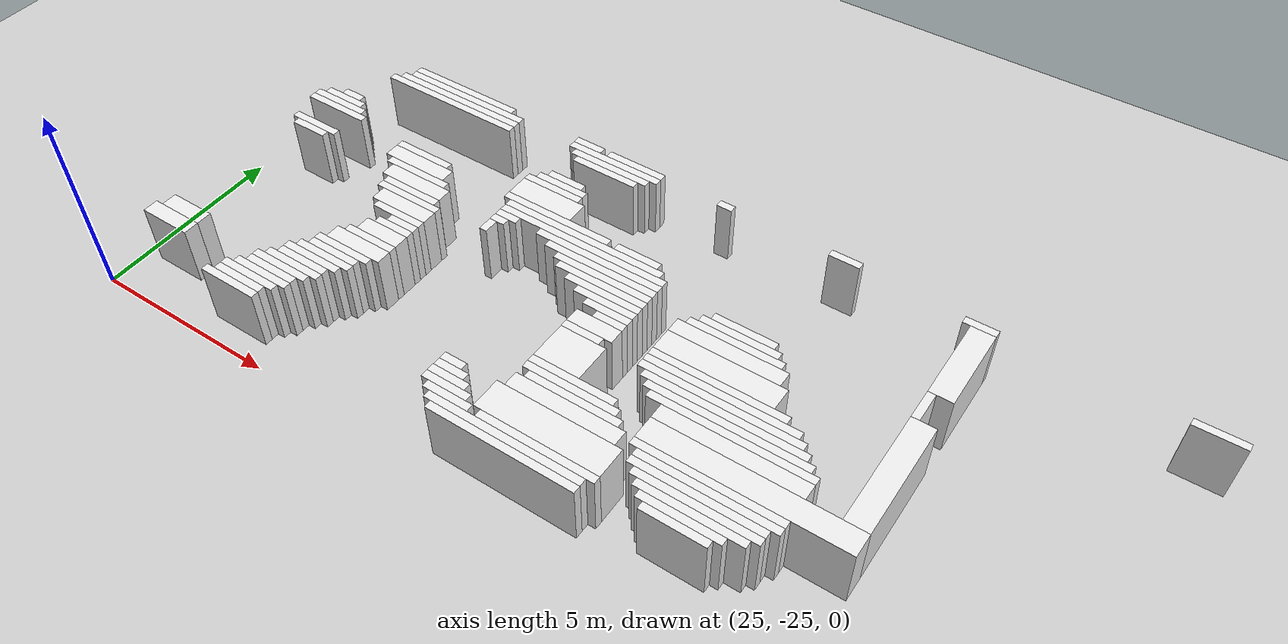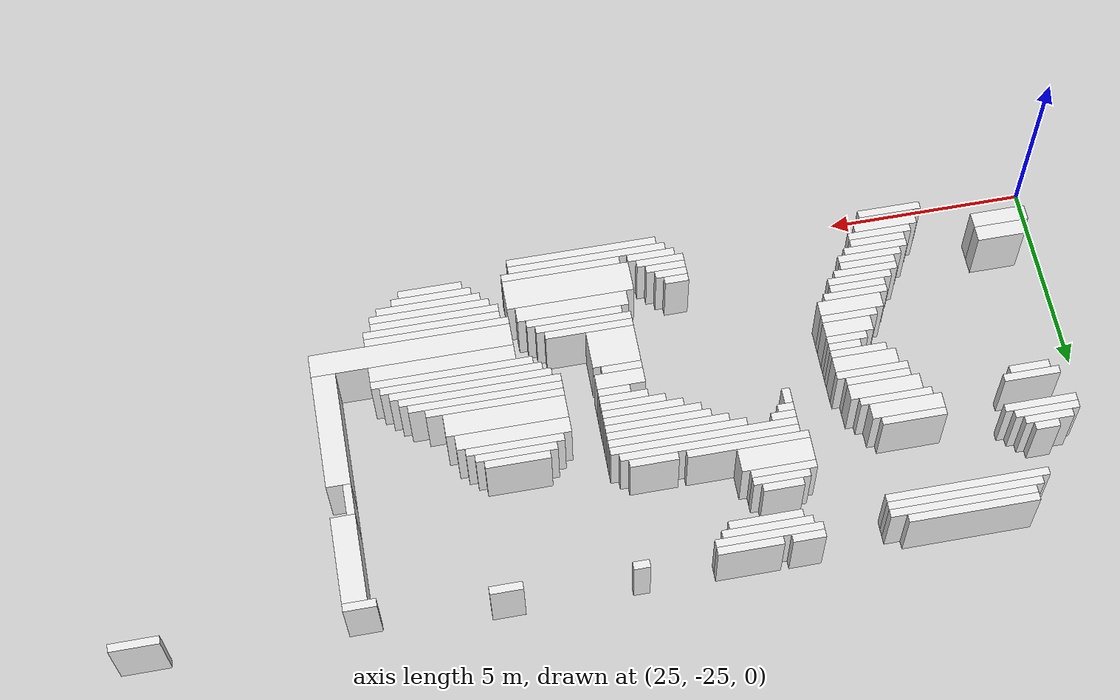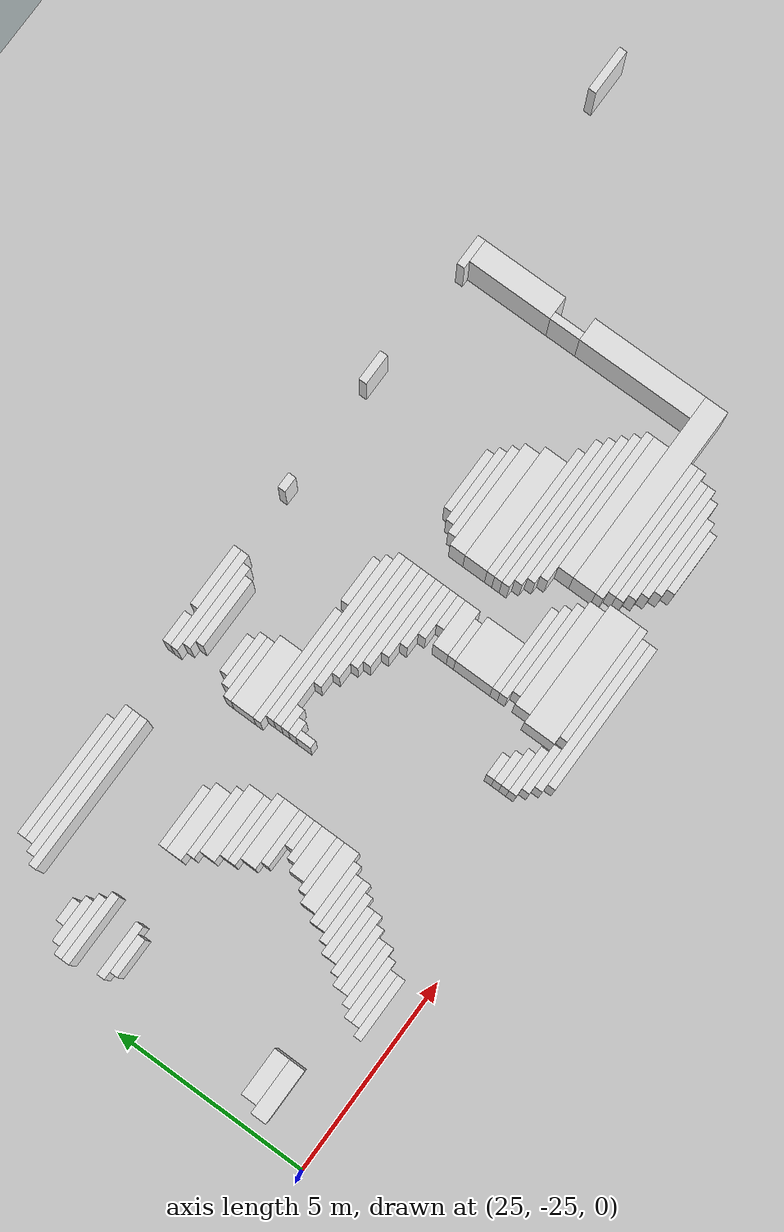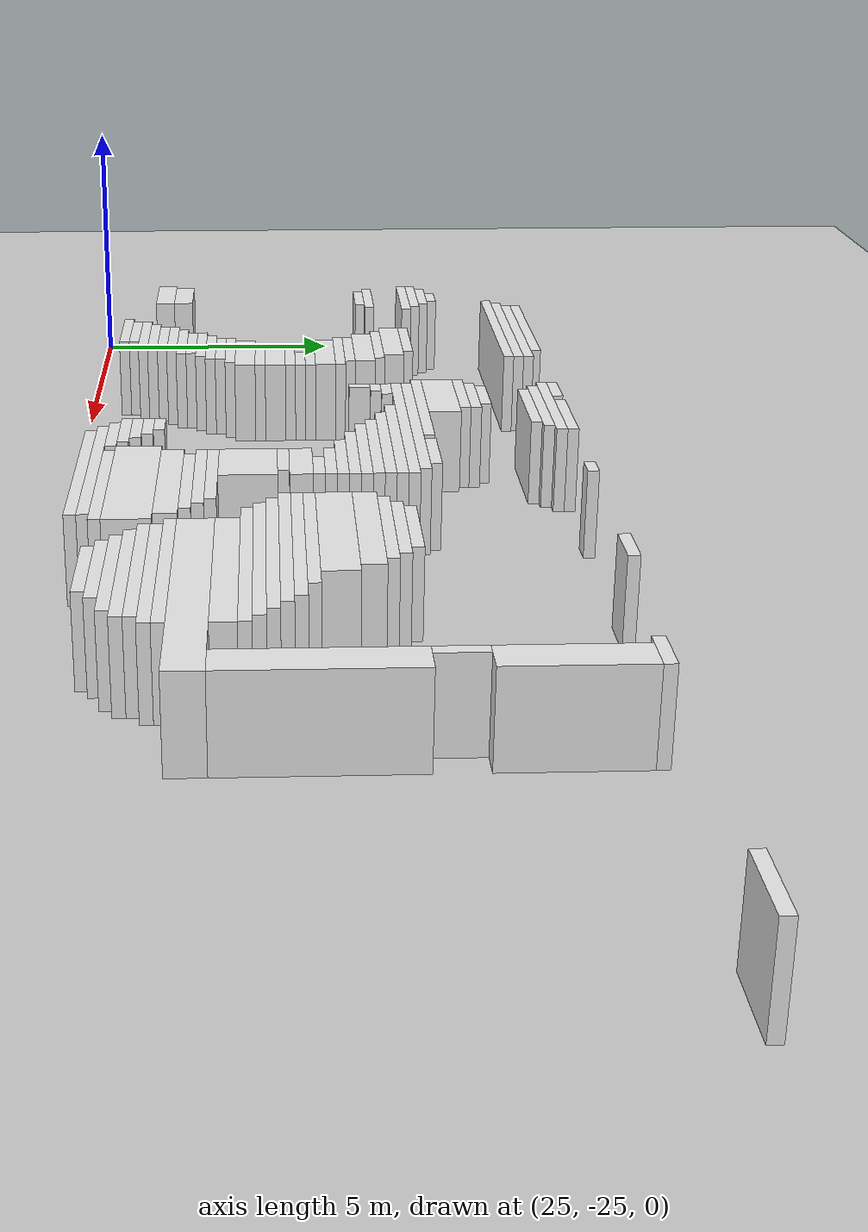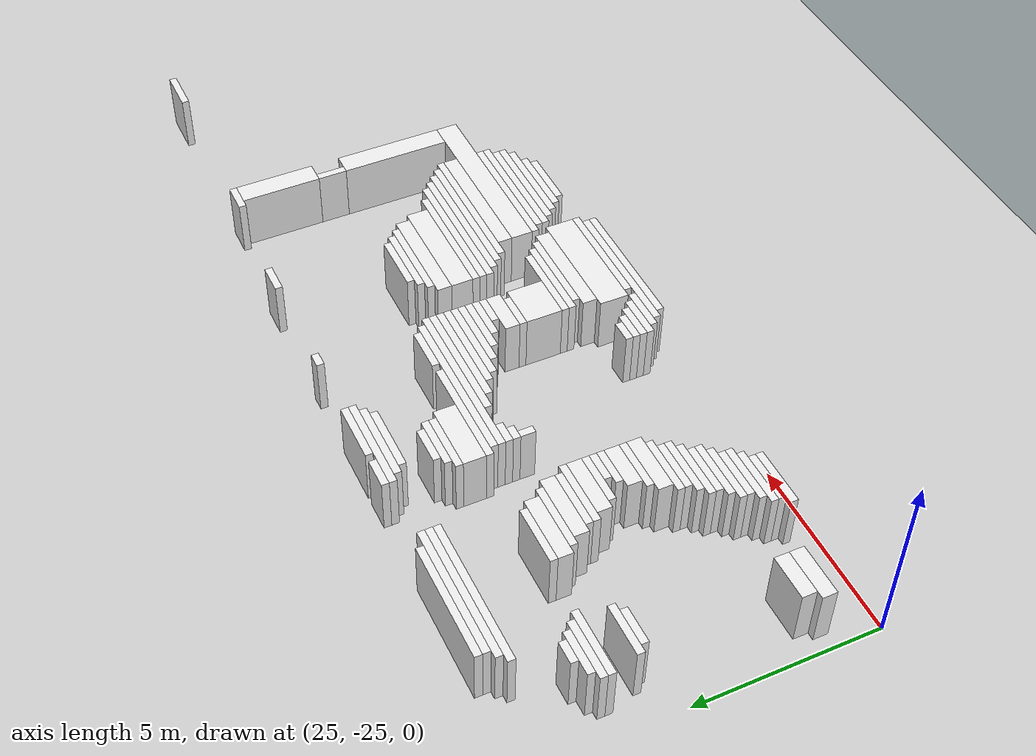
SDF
<sdf version="1.7">
 <world name="default">
  <model name="ground_plane">
   <static>1</static>
   <link name="link">
    <collision name="collision">
     <geometry><plane><normal>0 0 1</normal><size>120 120</size></plane></geometry>
    </collision>
    <visual name="visual">
     <geometry><plane><normal>0 0 1</normal><size>120 120</size></plane></geometry>
     <material>
      <script><uri>file://media/materials/scripts/gazebo.material</uri><name>Gazebo/Grey</name></script>
     </material>
    </visual>
   </link>
  </model>
  <model name="random_complex_01_model">
   <static>1</static>
   <link name="obs_2447">
    <pose>28.8000 -15.9000 0.8000 0 0 0</pose>
    <collision name="obs_2447_col"><geometry><box><size>3.2000 0.2000 1.6000</size></box></geometry></collision>
    <visual name="obs_2447_vis">
     <geometry><box><size>3.2000 0.2000 1.6000</size></box></geometry>
     <material>
      <script><uri>file://media/materials/scripts/gazebo.material</uri><name>Gazebo/White</name></script>
     </material>
    </visual>
   </link>
   <link name="obs_2448">
    <pose>32.8000 -15.9000 0.8000 0 0 0</pose>
    <collision name="obs_2448_col"><geometry><box><size>0.8000 0.2000 1.6000</size></box></geometry></collision>
    <visual name="obs_2448_vis">
     <geometry><box><size>0.8000 0.2000 1.6000</size></box></geometry>
     <material>
      <script><uri>file://media/materials/scripts/gazebo.material</uri><name>Gazebo/White</name></script>
     </material>
    </visual>
   </link>
   <link name="obs_2449">
    <pose>34.2000 -15.9000 0.8000 0 0 0</pose>
    <collision name="obs_2449_col"><geometry><box><size>1.6000 0.2000 1.6000</size></box></geometry></collision>
    <visual name="obs_2449_vis">
     <geometry><box><size>1.6000 0.2000 1.6000</size></box></geometry>
     <material>
      <script><uri>file://media/materials/scripts/gazebo.material</uri><name>Gazebo/White</name></script>
     </material>
    </visual>
   </link>
   <link name="obs_2450">
    <pose>36.8000 -15.9000 0.8000 0 0 0</pose>
    <collision name="obs_2450_col"><geometry><box><size>0.4000 0.2000 1.6000</size></box></geometry></collision>
    <visual name="obs_2450_vis">
     <geometry><box><size>0.4000 0.2000 1.6000</size></box></geometry>
     <material>
      <script><uri>file://media/materials/scripts/gazebo.material</uri><name>Gazebo/White</name></script>
     </material>
    </visual>
   </link>
   <link name="obs_2451">
    <pose>40.0000 -15.9000 0.8000 0 0 0</pose>
    <collision name="obs_2451_col"><geometry><box><size>0.8000 0.2000 1.6000</size></box></geometry></collision>
    <visual name="obs_2451_vis">
     <geometry><box><size>0.8000 0.2000 1.6000</size></box></geometry>
     <material>
      <script><uri>file://media/materials/scripts/gazebo.material</uri><name>Gazebo/White</name></script>
     </material>
    </visual>
   </link>
   <link name="obs_2459">
    <pose>29.0000 -16.1000 0.8000 0 0 0</pose>
    <collision name="obs_2459_col"><geometry><box><size>3.6000 0.2000 1.6000</size></box></geometry></collision>
    <visual name="obs_2459_vis">
     <geometry><box><size>3.6000 0.2000 1.6000</size></box></geometry>
     <material>
      <script><uri>file://media/materials/scripts/gazebo.material</uri><name>Gazebo/White</name></script>
     </material>
    </visual>
   </link>
   <link name="obs_2460">
    <pose>33.7000 -16.1000 0.8000 0 0 0</pose>
    <collision name="obs_2460_col"><geometry><box><size>2.6000 0.2000 1.6000</size></box></geometry></collision>
    <visual name="obs_2460_vis">
     <geometry><box><size>2.6000 0.2000 1.6000</size></box></geometry>
     <material>
      <script><uri>file://media/materials/scripts/gazebo.material</uri><name>Gazebo/White</name></script>
     </material>
    </visual>
   </link>
   <link name="obs_2461">
    <pose>43.4000 -16.1000 0.8000 0 0 0</pose>
    <collision name="obs_2461_col"><geometry><box><size>0.8000 0.2000 1.6000</size></box></geometry></collision>
    <visual name="obs_2461_vis">
     <geometry><box><size>0.8000 0.2000 1.6000</size></box></geometry>
     <material>
      <script><uri>file://media/materials/scripts/gazebo.material</uri><name>Gazebo/White</name></script>
     </material>
    </visual>
   </link>
   <link name="obs_2462">
    <pose>48.6000 -16.1000 0.8000 0 0 0</pose>
    <collision name="obs_2462_col"><geometry><box><size>1.2000 0.2000 1.6000</size></box></geometry></collision>
    <visual name="obs_2462_vis">
     <geometry><box><size>1.2000 0.2000 1.6000</size></box></geometry>
     <material>
      <script><uri>file://media/materials/scripts/gazebo.material</uri><name>Gazebo/White</name></script>
     </material>
    </visual>
   </link>
   <link name="obs_2468">
    <pose>28.9000 -16.3000 0.8000 0 0 0</pose>
    <collision name="obs_2468_col"><geometry><box><size>3.8000 0.2000 1.6000</size></box></geometry></collision>
    <visual name="obs_2468_vis">
     <geometry><box><size>3.8000 0.2000 1.6000</size></box></geometry>
     <material>
      <script><uri>file://media/materials/scripts/gazebo.material</uri><name>Gazebo/White</name></script>
     </material>
    </visual>
   </link>
   <link name="obs_2469">
    <pose>33.7000 -16.3000 0.8000 0 0 0</pose>
    <collision name="obs_2469_col"><geometry><box><size>2.2000 0.2000 1.6000</size></box></geometry></collision>
    <visual name="obs_2469_vis">
     <geometry><box><size>2.2000 0.2000 1.6000</size></box></geometry>
     <material>
      <script><uri>file://media/materials/scripts/gazebo.material</uri><name>Gazebo/White</name></script>
     </material>
    </visual>
   </link>
   <link name="obs_2482">
    <pose>28.8000 -16.5000 0.8000 0 0 0</pose>
    <collision name="obs_2482_col"><geometry><box><size>4.0000 0.2000 1.6000</size></box></geometry></collision>
    <visual name="obs_2482_vis">
     <geometry><box><size>4.0000 0.2000 1.6000</size></box></geometry>
     <material>
      <script><uri>file://media/materials/scripts/gazebo.material</uri><name>Gazebo/White</name></script>
     </material>
    </visual>
   </link>
   <link name="obs_2483">
    <pose>33.7000 -16.5000 0.8000 0 0 0</pose>
    <collision name="obs_2483_col"><geometry><box><size>1.8000 0.2000 1.6000</size></box></geometry></collision>
    <visual name="obs_2483_vis">
     <geometry><box><size>1.8000 0.2000 1.6000</size></box></geometry>
     <material>
      <script><uri>file://media/materials/scripts/gazebo.material</uri><name>Gazebo/White</name></script>
     </material>
    </visual>
   </link>
   <link name="obs_2493">
    <pose>33.1000 -17.3000 0.8000 0 0 0</pose>
    <collision name="obs_2493_col"><geometry><box><size>1.0000 0.2000 1.6000</size></box></geometry></collision>
    <visual name="obs_2493_vis">
     <geometry><box><size>1.0000 0.2000 1.6000</size></box></geometry>
     <material>
      <script><uri>file://media/materials/scripts/gazebo.material</uri><name>Gazebo/White</name></script>
     </material>
    </visual>
   </link>
   <link name="obs_2498">
    <pose>33.1000 -17.5000 0.8000 0 0 0</pose>
    <collision name="obs_2498_col"><geometry><box><size>1.4000 0.2000 1.6000</size></box></geometry></collision>
    <visual name="obs_2498_vis">
     <geometry><box><size>1.4000 0.2000 1.6000</size></box></geometry>
     <material>
      <script><uri>file://media/materials/scripts/gazebo.material</uri><name>Gazebo/White</name></script>
     </material>
    </visual>
   </link>
   <link name="obs_2505">
    <pose>26.5000 -17.7000 0.8000 0 0 0</pose>
    <collision name="obs_2505_col"><geometry><box><size>0.6000 0.2000 1.6000</size></box></geometry></collision>
    <visual name="obs_2505_vis">
     <geometry><box><size>0.6000 0.2000 1.6000</size></box></geometry>
     <material>
      <script><uri>file://media/materials/scripts/gazebo.material</uri><name>Gazebo/White</name></script>
     </material>
    </visual>
   </link>
   <link name="obs_2506">
    <pose>33.0000 -17.7000 0.8000 0 0 0</pose>
    <collision name="obs_2506_col"><geometry><box><size>1.6000 0.2000 1.6000</size></box></geometry></collision>
    <visual name="obs_2506_vis">
     <geometry><box><size>1.6000 0.2000 1.6000</size></box></geometry>
     <material>
      <script><uri>file://media/materials/scripts/gazebo.material</uri><name>Gazebo/White</name></script>
     </material>
    </visual>
   </link>
   <link name="obs_2512">
    <pose>26.4000 -17.9000 0.8000 0 0 0</pose>
    <collision name="obs_2512_col"><geometry><box><size>1.2000 0.2000 1.6000</size></box></geometry></collision>
    <visual name="obs_2512_vis">
     <geometry><box><size>1.2000 0.2000 1.6000</size></box></geometry>
     <material>
      <script><uri>file://media/materials/scripts/gazebo.material</uri><name>Gazebo/White</name></script>
     </material>
    </visual>
   </link>
   <link name="obs_2517">
    <pose>26.4000 -18.1000 0.8000 0 0 0</pose>
    <collision name="obs_2517_col"><geometry><box><size>1.6000 0.2000 1.6000</size></box></geometry></collision>
    <visual name="obs_2517_vis">
     <geometry><box><size>1.6000 0.2000 1.6000</size></box></geometry>
     <material>
      <script><uri>file://media/materials/scripts/gazebo.material</uri><name>Gazebo/White</name></script>
     </material>
    </visual>
   </link>
   <link name="obs_2518">
    <pose>43.5000 -17.3000 0.8000 0 0 0</pose>
    <collision name="obs_2518_col"><geometry><box><size>0.6000 2.2000 1.6000</size></box></geometry></collision>
    <visual name="obs_2518_vis">
     <geometry><box><size>0.6000 2.2000 1.6000</size></box></geometry>
     <material>
      <script><uri>file://media/materials/scripts/gazebo.material</uri><name>Gazebo/White</name></script>
     </material>
    </visual>
   </link>
   <link name="obs_2521">
    <pose>33.1000 -18.1000 0.8000 0 0 0</pose>
    <collision name="obs_2521_col"><geometry><box><size>1.8000 0.6000 1.6000</size></box></geometry></collision>
    <visual name="obs_2521_vis">
     <geometry><box><size>1.8000 0.6000 1.6000</size></box></geometry>
     <material>
      <script><uri>file://media/materials/scripts/gazebo.material</uri><name>Gazebo/White</name></script>
     </material>
    </visual>
   </link>
   <link name="obs_2524">
    <pose>26.5000 -18.3000 0.8000 0 0 0</pose>
    <collision name="obs_2524_col"><geometry><box><size>1.8000 0.2000 1.6000</size></box></geometry></collision>
    <visual name="obs_2524_vis">
     <geometry><box><size>1.8000 0.2000 1.6000</size></box></geometry>
     <material>
      <script><uri>file://media/materials/scripts/gazebo.material</uri><name>Gazebo/White</name></script>
     </material>
    </visual>
   </link>
   <link name="obs_2530">
    <pose>29.6000 -18.5000 0.8000 0 0 0</pose>
    <collision name="obs_2530_col"><geometry><box><size>1.6000 0.2000 1.6000</size></box></geometry></collision>
    <visual name="obs_2530_vis">
     <geometry><box><size>1.6000 0.2000 1.6000</size></box></geometry>
     <material>
      <script><uri>file://media/materials/scripts/gazebo.material</uri><name>Gazebo/White</name></script>
     </material>
    </visual>
   </link>
   <link name="obs_2531">
    <pose>33.7000 -18.5000 0.8000 0 0 0</pose>
    <collision name="obs_2531_col"><geometry><box><size>3.0000 0.2000 1.6000</size></box></geometry></collision>
    <visual name="obs_2531_vis">
     <geometry><box><size>3.0000 0.2000 1.6000</size></box></geometry>
     <material>
      <script><uri>file://media/materials/scripts/gazebo.material</uri><name>Gazebo/White</name></script>
     </material>
    </visual>
   </link>
   <link name="obs_2532">
    <pose>36.0000 -18.5000 0.8000 0 0 0</pose>
    <collision name="obs_2532_col"><geometry><box><size>1.2000 0.2000 1.6000</size></box></geometry></collision>
    <visual name="obs_2532_vis">
     <geometry><box><size>1.2000 0.2000 1.6000</size></box></geometry>
     <material>
      <script><uri>file://media/materials/scripts/gazebo.material</uri><name>Gazebo/White</name></script>
     </material>
    </visual>
   </link>
   <link name="obs_2534">
    <pose>34.6000 -18.7000 0.8000 0 0 0</pose>
    <collision name="obs_2534_col"><geometry><box><size>4.4000 0.2000 1.6000</size></box></geometry></collision>
    <visual name="obs_2534_vis">
     <geometry><box><size>4.4000 0.2000 1.6000</size></box></geometry>
     <material>
      <script><uri>file://media/materials/scripts/gazebo.material</uri><name>Gazebo/White</name></script>
     </material>
    </visual>
   </link>
   <link name="obs_2535">
    <pose>29.7000 -18.8000 0.8000 0 0 0</pose>
    <collision name="obs_2535_col"><geometry><box><size>1.8000 0.4000 1.6000</size></box></geometry></collision>
    <visual name="obs_2535_vis">
     <geometry><box><size>1.8000 0.4000 1.6000</size></box></geometry>
     <material>
      <script><uri>file://media/materials/scripts/gazebo.material</uri><name>Gazebo/White</name></script>
     </material>
    </visual>
   </link>
   <link name="obs_2537">
    <pose>34.7000 -18.9000 0.8000 0 0 0</pose>
    <collision name="obs_2537_col"><geometry><box><size>4.6000 0.2000 1.6000</size></box></geometry></collision>
    <visual name="obs_2537_vis">
     <geometry><box><size>4.6000 0.2000 1.6000</size></box></geometry>
     <material>
      <script><uri>file://media/materials/scripts/gazebo.material</uri><name>Gazebo/White</name></script>
     </material>
    </visual>
   </link>
   <link name="obs_2539">
    <pose>43.3000 -18.8000 0.8000 0 0 0</pose>
    <collision name="obs_2539_col"><geometry><box><size>0.2000 0.8000 1.6000</size></box></geometry></collision>
    <visual name="obs_2539_vis">
     <geometry><box><size>0.2000 0.8000 1.6000</size></box></geometry>
     <material>
      <script><uri>file://media/materials/scripts/gazebo.material</uri><name>Gazebo/White</name></script>
     </material>
    </visual>
   </link>
   <link name="obs_2543">
    <pose>26.5000 -19.1000 0.8000 0 0 0</pose>
    <collision name="obs_2543_col"><geometry><box><size>1.4000 0.2000 1.6000</size></box></geometry></collision>
    <visual name="obs_2543_vis">
     <geometry><box><size>1.4000 0.2000 1.6000</size></box></geometry>
     <material>
      <script><uri>file://media/materials/scripts/gazebo.material</uri><name>Gazebo/White</name></script>
     </material>
    </visual>
   </link>
   <link name="obs_2544">
    <pose>29.9000 -19.1000 0.8000 0 0 0</pose>
    <collision name="obs_2544_col"><geometry><box><size>1.8000 0.2000 1.6000</size></box></geometry></collision>
    <visual name="obs_2544_vis">
     <geometry><box><size>1.8000 0.2000 1.6000</size></box></geometry>
     <material>
      <script><uri>file://media/materials/scripts/gazebo.material</uri><name>Gazebo/White</name></script>
     </material>
    </visual>
   </link>
   <link name="obs_2545">
    <pose>32.7000 -19.1000 0.8000 0 0 0</pose>
    <collision name="obs_2545_col"><geometry><box><size>0.6000 0.2000 1.6000</size></box></geometry></collision>
    <visual name="obs_2545_vis">
     <geometry><box><size>0.6000 0.2000 1.6000</size></box></geometry>
     <material>
      <script><uri>file://media/materials/scripts/gazebo.material</uri><name>Gazebo/White</name></script>
     </material>
    </visual>
   </link>
   <link name="obs_2546">
    <pose>35.3000 -19.1000 0.8000 0 0 0</pose>
    <collision name="obs_2546_col"><geometry><box><size>3.4000 0.2000 1.6000</size></box></geometry></collision>
    <visual name="obs_2546_vis">
     <geometry><box><size>3.4000 0.2000 1.6000</size></box></geometry>
     <material>
      <script><uri>file://media/materials/scripts/gazebo.material</uri><name>Gazebo/White</name></script>
     </material>
    </visual>
   </link>
   <link name="obs_2547">
    <pose>39.2000 -19.1000 0.8000 0 0 0</pose>
    <collision name="obs_2547_col"><geometry><box><size>1.6000 0.2000 1.6000</size></box></geometry></collision>
    <visual name="obs_2547_vis">
     <geometry><box><size>1.6000 0.2000 1.6000</size></box></geometry>
     <material>
      <script><uri>file://media/materials/scripts/gazebo.material</uri><name>Gazebo/White</name></script>
     </material>
    </visual>
   </link>
   <link name="obs_2553">
    <pose>26.5000 -19.3000 0.8000 0 0 0</pose>
    <collision name="obs_2553_col"><geometry><box><size>1.0000 0.2000 1.6000</size></box></geometry></collision>
    <visual name="obs_2553_vis">
     <geometry><box><size>1.0000 0.2000 1.6000</size></box></geometry>
     <material>
      <script><uri>file://media/materials/scripts/gazebo.material</uri><name>Gazebo/White</name></script>
     </material>
    </visual>
   </link>
   <link name="obs_2554">
    <pose>32.6000 -19.3000 0.8000 0 0 0</pose>
    <collision name="obs_2554_col"><geometry><box><size>0.4000 0.2000 1.6000</size></box></geometry></collision>
    <visual name="obs_2554_vis">
     <geometry><box><size>0.4000 0.2000 1.6000</size></box></geometry>
     <material>
      <script><uri>file://media/materials/scripts/gazebo.material</uri><name>Gazebo/White</name></script>
     </material>
    </visual>
   </link>
   <link name="obs_2555">
    <pose>35.5000 -19.3000 0.8000 0 0 0</pose>
    <collision name="obs_2555_col"><geometry><box><size>3.0000 0.2000 1.6000</size></box></geometry></collision>
    <visual name="obs_2555_vis">
     <geometry><box><size>3.0000 0.2000 1.6000</size></box></geometry>
     <material>
      <script><uri>file://media/materials/scripts/gazebo.material</uri><name>Gazebo/White</name></script>
     </material>
    </visual>
   </link>
   <link name="obs_2556">
    <pose>39.2000 -19.3000 0.8000 0 0 0</pose>
    <collision name="obs_2556_col"><geometry><box><size>2.0000 0.2000 1.6000</size></box></geometry></collision>
    <visual name="obs_2556_vis">
     <geometry><box><size>2.0000 0.2000 1.6000</size></box></geometry>
     <material>
      <script><uri>file://media/materials/scripts/gazebo.material</uri><name>Gazebo/White</name></script>
     </material>
    </visual>
   </link>
   <link name="obs_2558">
    <pose>30.1000 -19.4000 0.8000 0 0 0</pose>
    <collision name="obs_2558_col"><geometry><box><size>1.8000 0.4000 1.6000</size></box></geometry></collision>
    <visual name="obs_2558_vis">
     <geometry><box><size>1.8000 0.4000 1.6000</size></box></geometry>
     <material>
      <script><uri>file://media/materials/scripts/gazebo.material</uri><name>Gazebo/White</name></script>
     </material>
    </visual>
   </link>
   <link name="obs_2563">
    <pose>35.7000 -19.5000 0.8000 0 0 0</pose>
    <collision name="obs_2563_col"><geometry><box><size>2.6000 0.2000 1.6000</size></box></geometry></collision>
    <visual name="obs_2563_vis">
     <geometry><box><size>2.6000 0.2000 1.6000</size></box></geometry>
     <material>
      <script><uri>file://media/materials/scripts/gazebo.material</uri><name>Gazebo/White</name></script>
     </material>
    </visual>
   </link>
   <link name="obs_2564">
    <pose>39.2000 -19.5000 0.8000 0 0 0</pose>
    <collision name="obs_2564_col"><geometry><box><size>2.4000 0.2000 1.6000</size></box></geometry></collision>
    <visual name="obs_2564_vis">
     <geometry><box><size>2.4000 0.2000 1.6000</size></box></geometry>
     <material>
      <script><uri>file://media/materials/scripts/gazebo.material</uri><name>Gazebo/White</name></script>
     </material>
    </visual>
   </link>
   <link name="obs_2566">
    <pose>32.5000 -19.6000 0.8000 0 0 0</pose>
    <collision name="obs_2566_col"><geometry><box><size>0.2000 0.4000 1.6000</size></box></geometry></collision>
    <visual name="obs_2566_vis">
     <geometry><box><size>0.2000 0.4000 1.6000</size></box></geometry>
     <material>
      <script><uri>file://media/materials/scripts/gazebo.material</uri><name>Gazebo/White</name></script>
     </material>
    </visual>
   </link>
   <link name="obs_2571">
    <pose>30.2000 -19.7000 0.8000 0 0 0</pose>
    <collision name="obs_2571_col"><geometry><box><size>1.6000 0.2000 1.6000</size></box></geometry></collision>
    <visual name="obs_2571_vis">
     <geometry><box><size>1.6000 0.2000 1.6000</size></box></geometry>
     <material>
      <script><uri>file://media/materials/scripts/gazebo.material</uri><name>Gazebo/White</name></script>
     </material>
    </visual>
   </link>
   <link name="obs_2572">
    <pose>35.8000 -19.7000 0.8000 0 0 0</pose>
    <collision name="obs_2572_col"><geometry><box><size>2.4000 0.2000 1.6000</size></box></geometry></collision>
    <visual name="obs_2572_vis">
     <geometry><box><size>2.4000 0.2000 1.6000</size></box></geometry>
     <material>
      <script><uri>file://media/materials/scripts/gazebo.material</uri><name>Gazebo/White</name></script>
     </material>
    </visual>
   </link>
   <link name="obs_2574">
    <pose>39.2000 -19.8000 0.8000 0 0 0</pose>
    <collision name="obs_2574_col"><geometry><box><size>2.8000 0.4000 1.6000</size></box></geometry></collision>
    <visual name="obs_2574_vis">
     <geometry><box><size>2.8000 0.4000 1.6000</size></box></geometry>
     <material>
      <script><uri>file://media/materials/scripts/gazebo.material</uri><name>Gazebo/White</name></script>
     </material>
    </visual>
   </link>
   <link name="obs_2578">
    <pose>30.3000 -19.9000 0.8000 0 0 0</pose>
    <collision name="obs_2578_col"><geometry><box><size>1.8000 0.2000 1.6000</size></box></geometry></collision>
    <visual name="obs_2578_vis">
     <geometry><box><size>1.8000 0.2000 1.6000</size></box></geometry>
     <material>
      <script><uri>file://media/materials/scripts/gazebo.material</uri><name>Gazebo/White</name></script>
     </material>
    </visual>
   </link>
   <link name="obs_2579">
    <pose>36.0000 -19.9000 0.8000 0 0 0</pose>
    <collision name="obs_2579_col"><geometry><box><size>2.0000 0.2000 1.6000</size></box></geometry></collision>
    <visual name="obs_2579_vis">
     <geometry><box><size>2.0000 0.2000 1.6000</size></box></geometry>
     <material>
      <script><uri>file://media/materials/scripts/gazebo.material</uri><name>Gazebo/White</name></script>
     </material>
    </visual>
   </link>
   <link name="obs_2585">
    <pose>36.2000 -20.1000 0.8000 0 0 0</pose>
    <collision name="obs_2585_col"><geometry><box><size>1.6000 0.2000 1.6000</size></box></geometry></collision>
    <visual name="obs_2585_vis">
     <geometry><box><size>1.6000 0.2000 1.6000</size></box></geometry>
     <material>
      <script><uri>file://media/materials/scripts/gazebo.material</uri><name>Gazebo/White</name></script>
     </material>
    </visual>
   </link>
   <link name="obs_2587">
    <pose>30.4000 -20.2000 0.8000 0 0 0</pose>
    <collision name="obs_2587_col"><geometry><box><size>1.6000 0.4000 1.6000</size></box></geometry></collision>
    <visual name="obs_2587_vis">
     <geometry><box><size>1.6000 0.4000 1.6000</size></box></geometry>
     <material>
      <script><uri>file://media/materials/scripts/gazebo.material</uri><name>Gazebo/White</name></script>
     </material>
    </visual>
   </link>
   <link name="obs_2591">
    <pose>36.4000 -20.3000 0.8000 0 0 0</pose>
    <collision name="obs_2591_col"><geometry><box><size>1.2000 0.2000 1.6000</size></box></geometry></collision>
    <visual name="obs_2591_vis">
     <geometry><box><size>1.2000 0.2000 1.6000</size></box></geometry>
     <material>
      <script><uri>file://media/materials/scripts/gazebo.material</uri><name>Gazebo/White</name></script>
     </material>
    </visual>
   </link>
   <link name="obs_2592">
    <pose>39.3000 -20.3000 0.8000 0 0 0</pose>
    <collision name="obs_2592_col"><geometry><box><size>3.0000 0.6000 1.6000</size></box></geometry></collision>
    <visual name="obs_2592_vis">
     <geometry><box><size>3.0000 0.6000 1.6000</size></box></geometry>
     <material>
      <script><uri>file://media/materials/scripts/gazebo.material</uri><name>Gazebo/White</name></script>
     </material>
    </visual>
   </link>
   <link name="obs_2598">
    <pose>30.5000 -20.5000 0.8000 0 0 0</pose>
    <collision name="obs_2598_col"><geometry><box><size>1.4000 0.2000 1.6000</size></box></geometry></collision>
    <visual name="obs_2598_vis">
     <geometry><box><size>1.4000 0.2000 1.6000</size></box></geometry>
     <material>
      <script><uri>file://media/materials/scripts/gazebo.material</uri><name>Gazebo/White</name></script>
     </material>
    </visual>
   </link>
   <link name="obs_2599">
    <pose>36.6000 -20.5000 0.8000 0 0 0</pose>
    <collision name="obs_2599_col"><geometry><box><size>0.8000 0.2000 1.6000</size></box></geometry></collision>
    <visual name="obs_2599_vis">
     <geometry><box><size>0.8000 0.2000 1.6000</size></box></geometry>
     <material>
      <script><uri>file://media/materials/scripts/gazebo.material</uri><name>Gazebo/White</name></script>
     </material>
    </visual>
   </link>
   <link name="obs_2605">
    <pose>30.8000 -20.7000 0.8000 0 0 0</pose>
    <collision name="obs_2605_col"><geometry><box><size>0.8000 0.2000 1.6000</size></box></geometry></collision>
    <visual name="obs_2605_vis">
     <geometry><box><size>0.8000 0.2000 1.6000</size></box></geometry>
     <material>
      <script><uri>file://media/materials/scripts/gazebo.material</uri><name>Gazebo/White</name></script>
     </material>
    </visual>
   </link>
   <link name="obs_2606">
    <pose>39.5000 -20.7000 0.8000 0 0 0</pose>
    <collision name="obs_2606_col"><geometry><box><size>3.4000 0.2000 1.6000</size></box></geometry></collision>
    <visual name="obs_2606_vis">
     <geometry><box><size>3.4000 0.2000 1.6000</size></box></geometry>
     <material>
      <script><uri>file://media/materials/scripts/gazebo.material</uri><name>Gazebo/White</name></script>
     </material>
    </visual>
   </link>
   <link name="obs_2610">
    <pose>36.4000 -20.8000 0.8000 0 0 0</pose>
    <collision name="obs_2610_col"><geometry><box><size>1.2000 0.4000 1.6000</size></box></geometry></collision>
    <visual name="obs_2610_vis">
     <geometry><box><size>1.2000 0.4000 1.6000</size></box></geometry>
     <material>
      <script><uri>file://media/materials/scripts/gazebo.material</uri><name>Gazebo/White</name></script>
     </material>
    </visual>
   </link>
   <link name="obs_2614">
    <pose>30.7000 -20.9000 0.8000 0 0 0</pose>
    <collision name="obs_2614_col"><geometry><box><size>1.0000 0.2000 1.6000</size></box></geometry></collision>
    <visual name="obs_2614_vis">
     <geometry><box><size>1.0000 0.2000 1.6000</size></box></geometry>
     <material>
      <script><uri>file://media/materials/scripts/gazebo.material</uri><name>Gazebo/White</name></script>
     </material>
    </visual>
   </link>
   <link name="obs_2615">
    <pose>39.7000 -20.9000 0.8000 0 0 0</pose>
    <collision name="obs_2615_col"><geometry><box><size>3.8000 0.2000 1.6000</size></box></geometry></collision>
    <visual name="obs_2615_vis">
     <geometry><box><size>3.8000 0.2000 1.6000</size></box></geometry>
     <material>
      <script><uri>file://media/materials/scripts/gazebo.material</uri><name>Gazebo/White</name></script>
     </material>
    </visual>
   </link>
   <link name="obs_2625">
    <pose>36.3000 -21.1000 0.8000 0 0 0</pose>
    <collision name="obs_2625_col"><geometry><box><size>1.0000 0.2000 1.6000</size></box></geometry></collision>
    <visual name="obs_2625_vis">
     <geometry><box><size>1.0000 0.2000 1.6000</size></box></geometry>
     <material>
      <script><uri>file://media/materials/scripts/gazebo.material</uri><name>Gazebo/White</name></script>
     </material>
    </visual>
   </link>
   <link name="obs_2626">
    <pose>39.8000 -21.1000 0.8000 0 0 0</pose>
    <collision name="obs_2626_col"><geometry><box><size>4.0000 0.2000 1.6000</size></box></geometry></collision>
    <visual name="obs_2626_vis">
     <geometry><box><size>4.0000 0.2000 1.6000</size></box></geometry>
     <material>
      <script><uri>file://media/materials/scripts/gazebo.material</uri><name>Gazebo/White</name></script>
     </material>
    </visual>
   </link>
   <link name="obs_2629">
    <pose>30.6000 -21.2000 0.8000 0 0 0</pose>
    <collision name="obs_2629_col"><geometry><box><size>1.2000 0.4000 1.6000</size></box></geometry></collision>
    <visual name="obs_2629_vis">
     <geometry><box><size>1.2000 0.4000 1.6000</size></box></geometry>
     <material>
      <script><uri>file://media/materials/scripts/gazebo.material</uri><name>Gazebo/White</name></script>
     </material>
    </visual>
   </link>
   <link name="obs_2632">
    <pose>40.0000 -21.3000 0.8000 0 0 0</pose>
    <collision name="obs_2632_col"><geometry><box><size>4.0000 0.2000 1.6000</size></box></geometry></collision>
    <visual name="obs_2632_vis">
     <geometry><box><size>4.0000 0.2000 1.6000</size></box></geometry>
     <material>
      <script><uri>file://media/materials/scripts/gazebo.material</uri><name>Gazebo/White</name></script>
     </material>
    </visual>
   </link>
   <link name="obs_2635">
    <pose>30.5000 -21.5000 0.8000 0 0 0</pose>
    <collision name="obs_2635_col"><geometry><box><size>1.4000 0.2000 1.6000</size></box></geometry></collision>
    <visual name="obs_2635_vis">
     <geometry><box><size>1.4000 0.2000 1.6000</size></box></geometry>
     <material>
      <script><uri>file://media/materials/scripts/gazebo.material</uri><name>Gazebo/White</name></script>
     </material>
    </visual>
   </link>
   <link name="obs_2636">
    <pose>40.2000 -21.5000 0.8000 0 0 0</pose>
    <collision name="obs_2636_col"><geometry><box><size>4.0000 0.2000 1.6000</size></box></geometry></collision>
    <visual name="obs_2636_vis">
     <geometry><box><size>4.0000 0.2000 1.6000</size></box></geometry>
     <material>
      <script><uri>file://media/materials/scripts/gazebo.material</uri><name>Gazebo/White</name></script>
     </material>
    </visual>
   </link>
   <link name="obs_2641">
    <pose>40.4000 -21.7000 0.8000 0 0 0</pose>
    <collision name="obs_2641_col"><geometry><box><size>4.0000 0.2000 1.6000</size></box></geometry></collision>
    <visual name="obs_2641_vis">
     <geometry><box><size>4.0000 0.2000 1.6000</size></box></geometry>
     <material>
      <script><uri>file://media/materials/scripts/gazebo.material</uri><name>Gazebo/White</name></script>
     </material>
    </visual>
   </link>
   <link name="obs_2642">
    <pose>30.4000 -21.8000 0.8000 0 0 0</pose>
    <collision name="obs_2642_col"><geometry><box><size>1.6000 0.4000 1.6000</size></box></geometry></collision>
    <visual name="obs_2642_vis">
     <geometry><box><size>1.6000 0.4000 1.6000</size></box></geometry>
     <material>
      <script><uri>file://media/materials/scripts/gazebo.material</uri><name>Gazebo/White</name></script>
     </material>
    </visual>
   </link>
   <link name="obs_2646">
    <pose>43.5000 -20.7000 0.8000 0 0 0</pose>
    <collision name="obs_2646_col"><geometry><box><size>0.6000 3.0000 1.6000</size></box></geometry></collision>
    <visual name="obs_2646_vis">
     <geometry><box><size>0.6000 3.0000 1.6000</size></box></geometry>
     <material>
      <script><uri>file://media/materials/scripts/gazebo.material</uri><name>Gazebo/White</name></script>
     </material>
    </visual>
   </link>
   <link name="obs_2648">
    <pose>36.4000 -21.7000 0.8000 0 0 0</pose>
    <collision name="obs_2648_col"><geometry><box><size>1.2000 1.0000 1.6000</size></box></geometry></collision>
    <visual name="obs_2648_vis">
     <geometry><box><size>1.2000 1.0000 1.6000</size></box></geometry>
     <material>
      <script><uri>file://media/materials/scripts/gazebo.material</uri><name>Gazebo/White</name></script>
     </material>
    </visual>
   </link>
   <link name="obs_2649">
    <pose>40.6000 -22.0000 0.8000 0 0 0</pose>
    <collision name="obs_2649_col"><geometry><box><size>3.6000 0.4000 1.6000</size></box></geometry></collision>
    <visual name="obs_2649_vis">
     <geometry><box><size>3.6000 0.4000 1.6000</size></box></geometry>
     <material>
      <script><uri>file://media/materials/scripts/gazebo.material</uri><name>Gazebo/White</name></script>
     </material>
    </visual>
   </link>
   <link name="obs_2652">
    <pose>30.2000 -22.1000 0.8000 0 0 0</pose>
    <collision name="obs_2652_col"><geometry><box><size>1.6000 0.2000 1.6000</size></box></geometry></collision>
    <visual name="obs_2652_vis">
     <geometry><box><size>1.6000 0.2000 1.6000</size></box></geometry>
     <material>
      <script><uri>file://media/materials/scripts/gazebo.material</uri><name>Gazebo/White</name></script>
     </material>
    </visual>
   </link>
   <link name="obs_2656">
    <pose>30.1000 -22.3000 0.8000 0 0 0</pose>
    <collision name="obs_2656_col"><geometry><box><size>1.4000 0.2000 1.6000</size></box></geometry></collision>
    <visual name="obs_2656_vis">
     <geometry><box><size>1.4000 0.2000 1.6000</size></box></geometry>
     <material>
      <script><uri>file://media/materials/scripts/gazebo.material</uri><name>Gazebo/White</name></script>
     </material>
    </visual>
   </link>
   <link name="obs_2657">
    <pose>36.9000 -22.3000 0.8000 0 0 0</pose>
    <collision name="obs_2657_col"><geometry><box><size>2.2000 0.2000 1.6000</size></box></geometry></collision>
    <visual name="obs_2657_vis">
     <geometry><box><size>2.2000 0.2000 1.6000</size></box></geometry>
     <material>
      <script><uri>file://media/materials/scripts/gazebo.material</uri><name>Gazebo/White</name></script>
     </material>
    </visual>
   </link>
   <link name="obs_2661">
    <pose>30.0000 -22.5000 0.8000 0 0 0</pose>
    <collision name="obs_2661_col"><geometry><box><size>1.6000 0.2000 1.6000</size></box></geometry></collision>
    <visual name="obs_2661_vis">
     <geometry><box><size>1.6000 0.2000 1.6000</size></box></geometry>
     <material>
      <script><uri>file://media/materials/scripts/gazebo.material</uri><name>Gazebo/White</name></script>
     </material>
    </visual>
   </link>
   <link name="obs_2662">
    <pose>37.0000 -22.5000 0.8000 0 0 0</pose>
    <collision name="obs_2662_col"><geometry><box><size>2.4000 0.2000 1.6000</size></box></geometry></collision>
    <visual name="obs_2662_vis">
     <geometry><box><size>2.4000 0.2000 1.6000</size></box></geometry>
     <material>
      <script><uri>file://media/materials/scripts/gazebo.material</uri><name>Gazebo/White</name></script>
     </material>
    </visual>
   </link>
   <link name="obs_2664">
    <pose>41.3000 -22.5000 0.8000 0 0 0</pose>
    <collision name="obs_2664_col"><geometry><box><size>5.0000 0.6000 1.6000</size></box></geometry></collision>
    <visual name="obs_2664_vis">
     <geometry><box><size>5.0000 0.6000 1.6000</size></box></geometry>
     <material>
      <script><uri>file://media/materials/scripts/gazebo.material</uri><name>Gazebo/White</name></script>
     </material>
    </visual>
   </link>
   <link name="obs_2667">
    <pose>29.8000 -22.7000 0.8000 0 0 0</pose>
    <collision name="obs_2667_col"><geometry><box><size>1.6000 0.2000 1.6000</size></box></geometry></collision>
    <visual name="obs_2667_vis">
     <geometry><box><size>1.6000 0.2000 1.6000</size></box></geometry>
     <material>
      <script><uri>file://media/materials/scripts/gazebo.material</uri><name>Gazebo/White</name></script>
     </material>
    </visual>
   </link>
   <link name="obs_2668">
    <pose>37.2000 -22.7000 0.8000 0 0 0</pose>
    <collision name="obs_2668_col"><geometry><box><size>2.4000 0.2000 1.6000</size></box></geometry></collision>
    <visual name="obs_2668_vis">
     <geometry><box><size>2.4000 0.2000 1.6000</size></box></geometry>
     <material>
      <script><uri>file://media/materials/scripts/gazebo.material</uri><name>Gazebo/White</name></script>
     </material>
    </visual>
   </link>
   <link name="obs_2673">
    <pose>29.7000 -22.9000 0.8000 0 0 0</pose>
    <collision name="obs_2673_col"><geometry><box><size>1.4000 0.2000 1.6000</size></box></geometry></collision>
    <visual name="obs_2673_vis">
     <geometry><box><size>1.4000 0.2000 1.6000</size></box></geometry>
     <material>
      <script><uri>file://media/materials/scripts/gazebo.material</uri><name>Gazebo/White</name></script>
     </material>
    </visual>
   </link>
   <link name="obs_2674">
    <pose>40.6000 -22.9000 0.8000 0 0 0</pose>
    <collision name="obs_2674_col"><geometry><box><size>3.6000 0.2000 1.6000</size></box></geometry></collision>
    <visual name="obs_2674_vis">
     <geometry><box><size>3.6000 0.2000 1.6000</size></box></geometry>
     <material>
      <script><uri>file://media/materials/scripts/gazebo.material</uri><name>Gazebo/White</name></script>
     </material>
    </visual>
   </link>
   <link name="obs_2676">
    <pose>37.2000 -23.0000 0.8000 0 0 0</pose>
    <collision name="obs_2676_col"><geometry><box><size>2.8000 0.4000 1.6000</size></box></geometry></collision>
    <visual name="obs_2676_vis">
     <geometry><box><size>2.8000 0.4000 1.6000</size></box></geometry>
     <material>
      <script><uri>file://media/materials/scripts/gazebo.material</uri><name>Gazebo/White</name></script>
     </material>
    </visual>
   </link>
   <link name="obs_2681">
    <pose>29.6000 -23.1000 0.8000 0 0 0</pose>
    <collision name="obs_2681_col"><geometry><box><size>1.6000 0.2000 1.6000</size></box></geometry></collision>
    <visual name="obs_2681_vis">
     <geometry><box><size>1.6000 0.2000 1.6000</size></box></geometry>
     <material>
      <script><uri>file://media/materials/scripts/gazebo.material</uri><name>Gazebo/White</name></script>
     </material>
    </visual>
   </link>
   <link name="obs_2682">
    <pose>40.7000 -23.1000 0.8000 0 0 0</pose>
    <collision name="obs_2682_col"><geometry><box><size>3.4000 0.2000 1.6000</size></box></geometry></collision>
    <visual name="obs_2682_vis">
     <geometry><box><size>3.4000 0.2000 1.6000</size></box></geometry>
     <material>
      <script><uri>file://media/materials/scripts/gazebo.material</uri><name>Gazebo/White</name></script>
     </material>
    </visual>
   </link>
   <link name="obs_2687">
    <pose>26.2000 -23.2000 0.8000 0 0 0</pose>
    <collision name="obs_2687_col"><geometry><box><size>1.2000 0.4000 1.6000</size></box></geometry></collision>
    <visual name="obs_2687_vis">
     <geometry><box><size>1.2000 0.4000 1.6000</size></box></geometry>
     <material>
      <script><uri>file://media/materials/scripts/gazebo.material</uri><name>Gazebo/White</name></script>
     </material>
    </visual>
   </link>
   <link name="obs_2693">
    <pose>29.4000 -23.3000 0.8000 0 0 0</pose>
    <collision name="obs_2693_col"><geometry><box><size>1.6000 0.2000 1.6000</size></box></geometry></collision>
    <visual name="obs_2693_vis">
     <geometry><box><size>1.6000 0.2000 1.6000</size></box></geometry>
     <material>
      <script><uri>file://media/materials/scripts/gazebo.material</uri><name>Gazebo/White</name></script>
     </material>
    </visual>
   </link>
   <link name="obs_2694">
    <pose>34.5000 -23.3000 0.8000 0 0 0</pose>
    <collision name="obs_2694_col"><geometry><box><size>0.6000 0.2000 1.6000</size></box></geometry></collision>
    <visual name="obs_2694_vis">
     <geometry><box><size>0.6000 0.2000 1.6000</size></box></geometry>
     <material>
      <script><uri>file://media/materials/scripts/gazebo.material</uri><name>Gazebo/White</name></script>
     </material>
    </visual>
   </link>
   <link name="obs_2695">
    <pose>40.6000 -23.3000 0.8000 0 0 0</pose>
    <collision name="obs_2695_col"><geometry><box><size>3.2000 0.2000 1.6000</size></box></geometry></collision>
    <visual name="obs_2695_vis">
     <geometry><box><size>3.2000 0.2000 1.6000</size></box></geometry>
     <material>
      <script><uri>file://media/materials/scripts/gazebo.material</uri><name>Gazebo/White</name></script>
     </material>
    </visual>
   </link>
   <link name="obs_2700">
    <pose>29.3000 -23.5000 0.8000 0 0 0</pose>
    <collision name="obs_2700_col"><geometry><box><size>1.4000 0.2000 1.6000</size></box></geometry></collision>
    <visual name="obs_2700_vis">
     <geometry><box><size>1.4000 0.2000 1.6000</size></box></geometry>
     <material>
      <script><uri>file://media/materials/scripts/gazebo.material</uri><name>Gazebo/White</name></script>
     </material>
    </visual>
   </link>
   <link name="obs_2701">
    <pose>34.6000 -23.5000 0.8000 0 0 0</pose>
    <collision name="obs_2701_col"><geometry><box><size>0.8000 0.2000 1.6000</size></box></geometry></collision>
    <visual name="obs_2701_vis">
     <geometry><box><size>0.8000 0.2000 1.6000</size></box></geometry>
     <material>
      <script><uri>file://media/materials/scripts/gazebo.material</uri><name>Gazebo/White</name></script>
     </material>
    </visual>
   </link>
   <link name="obs_2702">
    <pose>40.7000 -23.5000 0.8000 0 0 0</pose>
    <collision name="obs_2702_col"><geometry><box><size>3.0000 0.2000 1.6000</size></box></geometry></collision>
    <visual name="obs_2702_vis">
     <geometry><box><size>3.0000 0.2000 1.6000</size></box></geometry>
     <material>
      <script><uri>file://media/materials/scripts/gazebo.material</uri><name>Gazebo/White</name></script>
     </material>
    </visual>
   </link>
   <link name="obs_2704">
    <pose>26.1000 -23.6000 0.8000 0 0 0</pose>
    <collision name="obs_2704_col"><geometry><box><size>1.4000 0.4000 1.6000</size></box></geometry></collision>
    <visual name="obs_2704_vis">
     <geometry><box><size>1.4000 0.4000 1.6000</size></box></geometry>
     <material>
      <script><uri>file://media/materials/scripts/gazebo.material</uri><name>Gazebo/White</name></script>
     </material>
    </visual>
   </link>
   <link name="obs_2706">
    <pose>29.2000 -23.7000 0.8000 0 0 0</pose>
    <collision name="obs_2706_col"><geometry><box><size>1.6000 0.2000 1.6000</size></box></geometry></collision>
    <visual name="obs_2706_vis">
     <geometry><box><size>1.6000 0.2000 1.6000</size></box></geometry>
     <material>
      <script><uri>file://media/materials/scripts/gazebo.material</uri><name>Gazebo/White</name></script>
     </material>
    </visual>
   </link>
   <link name="obs_2707">
    <pose>34.7000 -23.7000 0.8000 0 0 0</pose>
    <collision name="obs_2707_col"><geometry><box><size>1.0000 0.2000 1.6000</size></box></geometry></collision>
    <visual name="obs_2707_vis">
     <geometry><box><size>1.0000 0.2000 1.6000</size></box></geometry>
     <material>
      <script><uri>file://media/materials/scripts/gazebo.material</uri><name>Gazebo/White</name></script>
     </material>
    </visual>
   </link>
   <link name="obs_2708">
    <pose>40.7000 -23.7000 0.8000 0 0 0</pose>
    <collision name="obs_2708_col"><geometry><box><size>2.6000 0.2000 1.6000</size></box></geometry></collision>
    <visual name="obs_2708_vis">
     <geometry><box><size>2.6000 0.2000 1.6000</size></box></geometry>
     <material>
      <script><uri>file://media/materials/scripts/gazebo.material</uri><name>Gazebo/White</name></script>
     </material>
    </visual>
   </link>
   <link name="obs_2709">
    <pose>37.2000 -23.6000 0.8000 0 0 0</pose>
    <collision name="obs_2709_col"><geometry><box><size>3.2000 0.8000 1.6000</size></box></geometry></collision>
    <visual name="obs_2709_vis">
     <geometry><box><size>3.2000 0.8000 1.6000</size></box></geometry>
     <material>
      <script><uri>file://media/materials/scripts/gazebo.material</uri><name>Gazebo/White</name></script>
     </material>
    </visual>
   </link>
   <link name="obs_2713">
    <pose>29.0000 -23.9000 0.8000 0 0 0</pose>
    <collision name="obs_2713_col"><geometry><box><size>1.6000 0.2000 1.6000</size></box></geometry></collision>
    <visual name="obs_2713_vis">
     <geometry><box><size>1.6000 0.2000 1.6000</size></box></geometry>
     <material>
      <script><uri>file://media/materials/scripts/gazebo.material</uri><name>Gazebo/White</name></script>
     </material>
    </visual>
   </link>
   <link name="obs_2714">
    <pose>34.8000 -23.9000 0.8000 0 0 0</pose>
    <collision name="obs_2714_col"><geometry><box><size>1.2000 0.2000 1.6000</size></box></geometry></collision>
    <visual name="obs_2714_vis">
     <geometry><box><size>1.2000 0.2000 1.6000</size></box></geometry>
     <material>
      <script><uri>file://media/materials/scripts/gazebo.material</uri><name>Gazebo/White</name></script>
     </material>
    </visual>
   </link>
   <link name="obs_2715">
    <pose>40.6000 -23.9000 0.8000 0 0 0</pose>
    <collision name="obs_2715_col"><geometry><box><size>2.0000 0.2000 1.6000</size></box></geometry></collision>
    <visual name="obs_2715_vis">
     <geometry><box><size>2.0000 0.2000 1.6000</size></box></geometry>
     <material>
      <script><uri>file://media/materials/scripts/gazebo.material</uri><name>Gazebo/White</name></script>
     </material>
    </visual>
   </link>
   <link name="obs_2720">
    <pose>28.9000 -24.1000 0.8000 0 0 0</pose>
    <collision name="obs_2720_col"><geometry><box><size>1.4000 0.2000 1.6000</size></box></geometry></collision>
    <visual name="obs_2720_vis">
     <geometry><box><size>1.4000 0.2000 1.6000</size></box></geometry>
     <material>
      <script><uri>file://media/materials/scripts/gazebo.material</uri><name>Gazebo/White</name></script>
     </material>
    </visual>
   </link>
   <link name="obs_2721">
    <pose>35.0000 -24.1000 0.8000 0 0 0</pose>
    <collision name="obs_2721_col"><geometry><box><size>1.2000 0.2000 1.6000</size></box></geometry></collision>
    <visual name="obs_2721_vis">
     <geometry><box><size>1.2000 0.2000 1.6000</size></box></geometry>
     <material>
      <script><uri>file://media/materials/scripts/gazebo.material</uri><name>Gazebo/White</name></script>
     </material>
    </visual>
   </link>
   <link name="obs_2722">
    <pose>37.3000 -24.1000 0.8000 0 0 0</pose>
    <collision name="obs_2722_col"><geometry><box><size>3.0000 0.2000 1.6000</size></box></geometry></collision>
    <visual name="obs_2722_vis">
     <geometry><box><size>3.0000 0.2000 1.6000</size></box></geometry>
     <material>
      <script><uri>file://media/materials/scripts/gazebo.material</uri><name>Gazebo/White</name></script>
     </material>
    </visual>
   </link>
   <link name="obs_2723">
    <pose>40.6000 -24.1000 0.8000 0 0 0</pose>
    <collision name="obs_2723_col"><geometry><box><size>1.6000 0.2000 1.6000</size></box></geometry></collision>
    <visual name="obs_2723_vis">
     <geometry><box><size>1.6000 0.2000 1.6000</size></box></geometry>
     <material>
      <script><uri>file://media/materials/scripts/gazebo.material</uri><name>Gazebo/White</name></script>
     </material>
    </visual>
   </link>
   <link name="obs_2728">
    <pose>28.8000 -24.3000 0.8000 0 0 0</pose>
    <collision name="obs_2728_col"><geometry><box><size>1.6000 0.2000 1.6000</size></box></geometry></collision>
    <visual name="obs_2728_vis">
     <geometry><box><size>1.6000 0.2000 1.6000</size></box></geometry>
     <material>
      <script><uri>file://media/materials/scripts/gazebo.material</uri><name>Gazebo/White</name></script>
     </material>
    </visual>
   </link>
   <link name="obs_2729">
    <pose>36.6000 -24.3000 0.8000 0 0 0</pose>
    <collision name="obs_2729_col"><geometry><box><size>4.0000 0.2000 1.6000</size></box></geometry></collision>
    <visual name="obs_2729_vis">
     <geometry><box><size>4.0000 0.2000 1.6000</size></box></geometry>
     <material>
      <script><uri>file://media/materials/scripts/gazebo.material</uri><name>Gazebo/White</name></script>
     </material>
    </visual>
   </link>
   <link name="obs_2737">
    <pose>36.7000 -24.5000 0.8000 0 0 0</pose>
    <collision name="obs_2737_col"><geometry><box><size>3.8000 0.2000 1.6000</size></box></geometry></collision>
    <visual name="obs_2737_vis">
     <geometry><box><size>3.8000 0.2000 1.6000</size></box></geometry>
     <material>
      <script><uri>file://media/materials/scripts/gazebo.material</uri><name>Gazebo/White</name></script>
     </material>
    </visual>
   </link>
  </model>
 </world>
</sdf>
